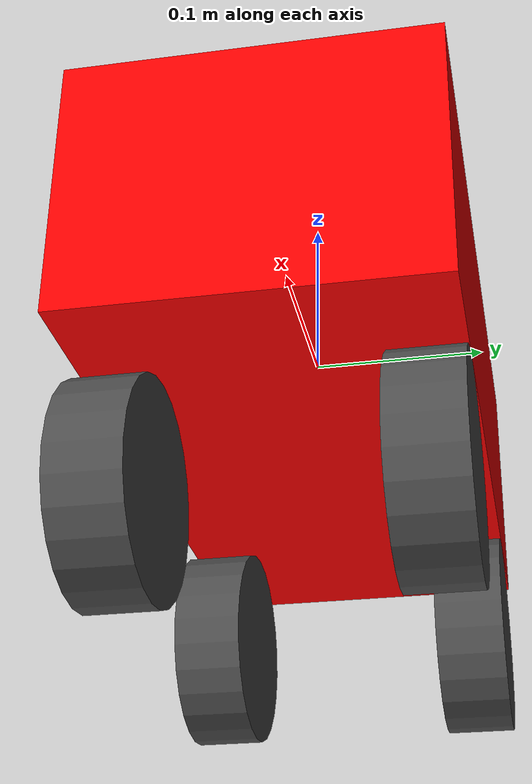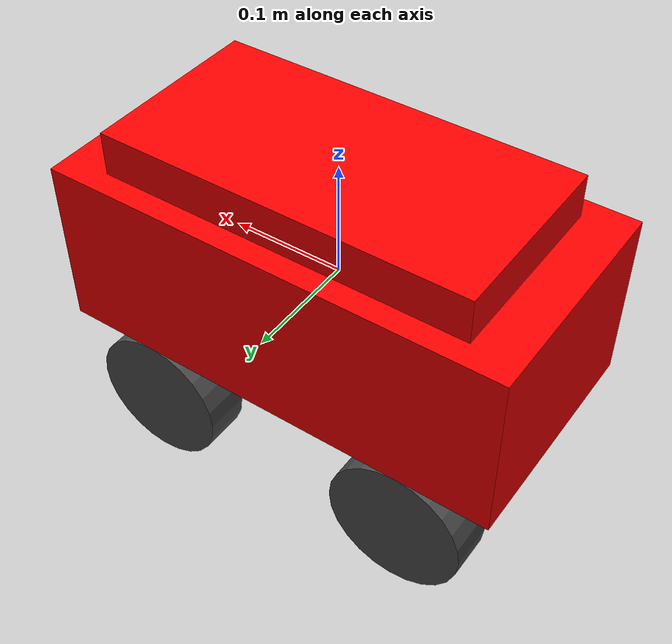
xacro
<?xml version="1.0"?>
<robot xmlns:xacro="http://www.ros.org/wiki/xacro" name="my_robot">

  <!-- Constants -->
  <xacro:property name="body_length" value="0.4" />
  <xacro:property name="body_width" value="0.2" />
  <xacro:property name="body_height" value="0.15" />
  <xacro:property name="wheel_radius" value="0.06" />
  <xacro:property name="wheel_thickness" value="0.04" />

  <!-- Main chassis -->
  <link name="chassis">
    <inertial>
      <mass value="15"/>
      <inertia ixx="0.5" ixy="0" ixz="0" iyy="0.5" iyz="0" izz="0.3"/>
    </inertial>
    <visual>
      <geometry>
        <box size="${body_length} ${body_width} ${body_height}"/>
      </geometry>
      <material name="red">
        <color rgba="1 0 0 1"/>
      </material>
    </visual>
    <collision>
      <geometry>
        <box size="${body_length} ${body_width} ${body_height}"/>
      </geometry>
    </collision>
  </link>

  <!-- Car roof -->
  <link name="roof">
    <inertial>
      <mass value="2"/>
      <inertia ixx="0.05" ixy="0" ixz="0" iyy="0.05" iyz="0" izz="0.03"/>
    </inertial>
    <visual>
      <geometry>
        <box size="${body_length*0.8} ${body_width*0.8} ${body_height*0.5}"/>
      </geometry>
      <material name="red"/>
    </visual>
    <collision>
      <geometry>
        <box size="${body_length*0.8} ${body_width*0.8} ${body_height*0.5}"/>
      </geometry>
    </collision>
  </link>

  <joint name="roof_joint" type="fixed">
    <parent link="chassis"/>
    <child link="roof"/>
    <origin xyz="0 0 ${body_height/2}" rpy="0 0 0"/>
  </joint>

  <!-- Wheel macro -->
  <xacro:macro name="wheel" params="prefix reflect">
    <link name="${prefix}_wheel">
      <inertial>
        <mass value="1.5"/>
        <inertia ixx="0.001" ixy="0" ixz="0" iyy="0.001" iyz="0" izz="0.001"/>
      </inertial>
      <visual>
        <geometry>
          <cylinder radius="${wheel_radius}" length="${wheel_thickness}"/>
        </geometry>
        <material name="dark_gray"/>
      </visual>
      <collision>
        <geometry>
          <cylinder radius="${wheel_radius}" length="${wheel_thickness}"/>
        </geometry>
      </collision>
    </link>
  </xacro:macro>

  <!-- Create wheels -->
  <xacro:wheel prefix="front_left" reflect="1"/>
  <xacro:wheel prefix="front_right" reflect="-1"/>
  <xacro:wheel prefix="rear_left" reflect="1"/>
  <xacro:wheel prefix="rear_right" reflect="-1"/>

  <!-- Wheel joints -->
  <xacro:macro name="wheel_joint" params="prefix x y z">
    <joint name="${prefix}_wheel_joint" type="continuous">
      <parent link="chassis"/>
      <child link="${prefix}_wheel"/>
      <origin xyz="${x} ${y} ${z}" rpy="1.5708 0 0"/>
      <axis xyz="0 0 1"/>
    </joint>
  </xacro:macro>

  <xacro:wheel_joint prefix="front_left"
    x="${body_length*0.3}" y="${body_width*0.4}" z="-${body_height/2 + wheel_radius}"/>
  <xacro:wheel_joint prefix="front_right"
    x="${body_length*0.3}" y="-${body_width*0.4}" z="-${body_height/2 + wheel_radius}"/>
  <xacro:wheel_joint prefix="rear_left"
    x="-${body_length*0.3}" y="${body_width*0.4}" z="-${body_height/2 + wheel_radius}"/>
  <xacro:wheel_joint prefix="rear_right"
    x="-${body_length*0.3}" y="-${body_width*0.4}" z="-${body_height/2 + wheel_radius}"/>

  <!-- Gazebo plugins and materials -->
  <gazebo>
    <plugin name="differential_drive_controller" filename="libgazebo_ros_diff_drive.so">
      <ros>
        <namespace>/</namespace>
      </ros>
      <left_joint>rear_left_wheel_joint</left_joint>
      <right_joint>rear_right_wheel_joint</right_joint>
      <wheel_separation>${body_width*0.8}</wheel_separation>
      <wheel_diameter>${2*wheel_radius}</wheel_diameter>
      <max_wheel_torque>20</max_wheel_torque>
      <command_topic>cmd_vel</command_topic>
      <odometry_topic>odom</odometry_topic>
      <odometry_frame>odom</odometry_frame>
      <robot_base_frame>chassis</robot_base_frame>
    </plugin>
  </gazebo>

  <gazebo reference="chassis">
    <material>Gazebo/Red</material>
  </gazebo>
  <gazebo reference="roof">
    <material>Gazebo/Red</material>
  </gazebo>

  <!-- Front wheel steering (caster) -->
  <gazebo reference="front_left_wheel">
    <mu1 value="0.0"/>
    <mu2 value="0.0"/>
    <kp value="10000000.0"/>
    <kd value="1.0"/>
  </gazebo>

  <gazebo reference="front_right_wheel">
    <mu1 value="0.0"/>
    <mu2 value="0.0"/>
    <kp value="10000000.0"/>
    <kd value="1.0"/>
  </gazebo>

</robot>
